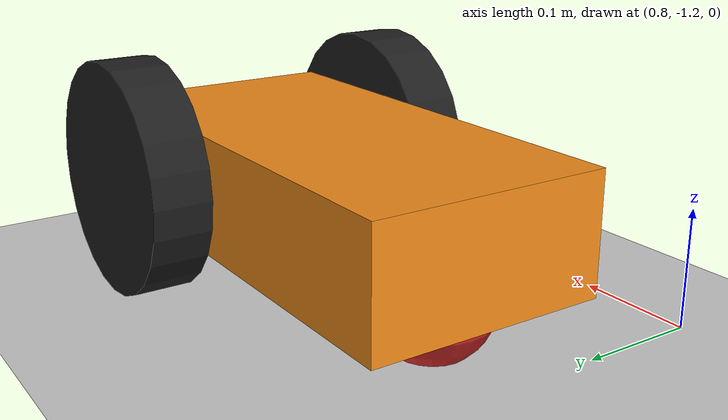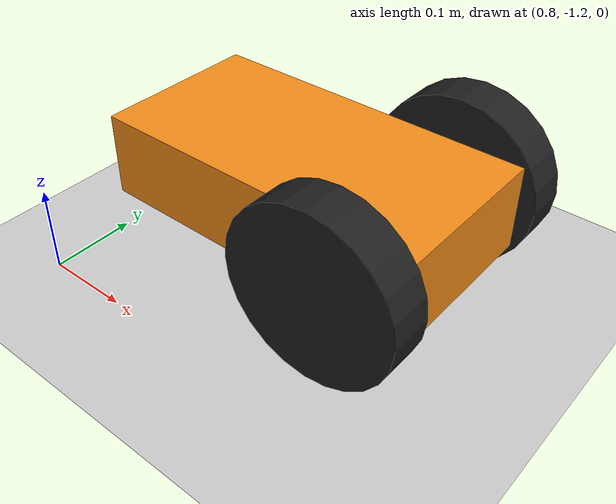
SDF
<sdf version="1.4">
 <world name="default">
  <light name="sun" type="directional">
   <pose>0 0 10 0 -0 0</pose>
   <diffuse>0.8 0.8 0.8 1</diffuse>
   <specular>0.2 0.2 0.2 1</specular>
   <attenuation>
    <range>1000</range>
    <constant>0.9</constant>
    <linear>0.01</linear>
    <quadratic>0.001</quadratic>
   </attenuation>
   <direction>-0.5 0.1 -0.9</direction>
  </light>
  <model name="ground_plane">
   <static>1</static>
   <link name="link">
    <collision name="collision">
     <geometry><plane><normal>0 0 1</normal><size>100 100</size></plane></geometry>
     <surface><friction><ode><mu>100</mu><mu2>50</mu2></ode></friction></surface>
    </collision>
    <visual name="visual">
     <cast_shadows>0</cast_shadows>
     <geometry><plane><normal>0 0 1</normal><size>100 100</size></plane></geometry>
     <material>
      <script><uri>file://media/materials/scripts/gazebo.material</uri><name>Gazebo/Grey</name></script>
     </material>
    </visual>
    <velocity_decay><linear>0</linear><angular>0</angular></velocity_decay>
   </link>
  </model>
  <physics type="ode">
   <max_step_size>0.001</max_step_size>
   <real_time_factor>1</real_time_factor>
   <real_time_update_rate>1000</real_time_update_rate>
   <gravity>0 0 -9.8</gravity>
  </physics>
  <scene><ambient>0.4 0.4 0.4 1</ambient><background>0.7 0.7 0.7 1</background><shadows>1</shadows></scene>
  <spherical_coordinates>
   <surface_model>EARTH_WGS84</surface_model>
   <latitude_deg>0</latitude_deg>
   <longitude_deg>0</longitude_deg>
   <elevation>0</elevation>
   <heading_deg>0</heading_deg>
  </spherical_coordinates>
  <model name="mobot">
   <static>0</static>
   <link name="chassis">
    <pose>0 0 0.1 0 -0 0</pose>
    <collision name="collision"><geometry><box><size>0.4 0.2 0.1</size></box></geometry></collision>
    <visual name="visual">
     <geometry><box><size>0.4 0.2 0.1</size></box></geometry>
     <material><script><name>Gazebo/Orange</name><uri>__default__</uri></script></material>
    </visual>
    <inertial>
     <mass>50</mass>
     <inertia>
      <ixx>0.208333</ixx>
      <iyy>0.708333</iyy>
      <izz>0.833333</izz>
      <ixy>0</ixy>
      <ixz>0</ixz>
      <iyz>0</iyz>
     </inertia>
    </inertial>
    <collision name="caster_collision">
     <pose>-0.133333 0 -0.05 0 -0 0</pose>
     <geometry><sphere><radius>0.05</radius></sphere></geometry>
     <surface><friction><ode><mu>0</mu><mu2>0</mu2><slip1>1</slip1><slip2>1</slip2></ode></friction></surface>
    </collision>
    <visual name="caster_visual">
     <pose>-0.133333 0 -0.05 0 -0 0</pose>
     <geometry><sphere><radius>0.05</radius></sphere></geometry>
     <material><script><name>Gazebo/Red</name><uri>__default__</uri></script></material>
    </visual>
    <velocity_decay><linear>0</linear><angular>0</angular></velocity_decay>
   </link>
   <link name="left_wheel">
    <pose>0.12 0.125 0.1 -3.14158 1.57079 -1.57078</pose>
    <collision name="left_wheel_collision">
     <geometry><cylinder><radius>0.1</radius><length>0.05</length></cylinder></geometry>
     <surface><friction><ode><mu>1</mu><mu2>1</mu2><slip1>0</slip1><slip2>0</slip2></ode></friction></surface>
    </collision>
    <visual name="left_wheel_visual">
     <geometry><cylinder><radius>0.1</radius><length>0.05</length></cylinder></geometry>
     <material><script><name>Gazebo/Black</name><uri>__default__</uri></script></material>
    </visual>
    <inertial>
     <mass>5</mass>
     <inertia>
      <ixx>0.0135417</ixx>
      <iyy>0.0135417</iyy>
      <izz>0.025</izz>
      <ixy>0</ixy>
      <ixz>0</ixz>
      <iyz>0</iyz>
     </inertia>
    </inertial>
    <velocity_decay><linear>0</linear><angular>0</angular></velocity_decay>
   </link>
   <joint name="left_wheel_hinge" type="revolute">
    <parent>chassis</parent>
    <child>left_wheel</child>
    <pose>0 0 0.025 0 -0 0</pose>
    <axis>
     <xyz>0 1 0</xyz>
     <dynamics><damping>5</damping></dynamics>
     <limit><effort>100</effort><velocity>100</velocity><lower>-1e+16</lower><upper>1e+16</upper></limit>
    </axis>
   </joint>
   <link name="right_wheel">
    <pose>0.12 -0.125 0.1 -3.14158 1.57079 -1.57078</pose>
    <collision name="right_wheel_collision">
     <geometry><cylinder><radius>0.1</radius><length>0.05</length></cylinder></geometry>
     <surface><friction><ode><mu>1</mu><mu2>1</mu2><slip1>0</slip1><slip2>0</slip2></ode></friction></surface>
    </collision>
    <visual name="right_wheel_visual">
     <geometry><cylinder><radius>0.1</radius><length>0.05</length></cylinder></geometry>
     <material><script><name>Gazebo/Black</name><uri>__default__</uri></script></material>
    </visual>
    <inertial>
     <mass>5</mass>
     <inertia>
      <ixx>0.0135417</ixx>
      <iyy>0.0135417</iyy>
      <izz>0.025</izz>
      <ixy>0</ixy>
      <ixz>0</ixz>
      <iyz>0</iyz>
     </inertia>
    </inertial>
    <velocity_decay><linear>0</linear><angular>0</angular></velocity_decay>
   </link>
   <joint name="right_wheel_hinge" type="revolute">
    <parent>chassis</parent>
    <child>right_wheel</child>
    <pose>0 0 0.025 0 -0 0</pose>
    <axis>
     <xyz>0 1 0</xyz>
     <dynamics><damping>5</damping></dynamics>
     <limit><effort>100</effort><velocity>100</velocity><lower>-1e+16</lower><upper>1e+16</upper></limit>
    </axis>
   </joint>
   <plugin name="differential_drive_controller" filename="libgazebo_ros_diff_drive.so">
    <alwaysOn>true</alwaysOn>
    <updateRate>100</updateRate>
    <leftJoint>left_wheel_hinge</leftJoint>
    <rightJoint>right_wheel_hinge</rightJoint>
    <wheelSeparation>0.25</wheelSeparation>
    <wheelDiameter>0.2</wheelDiameter>
    <torque>20</torque>
    <commandTopic>mobot/cmd_vel</commandTopic>
    <odometryTopic>mobot/odom_diffdrive</odometryTopic>
    <odometryFrame>odom</odometryFrame>
    <robotBaseFrame>chassis</robotBaseFrame>
   </plugin>
   <pose>1.00101 -1.00035 0 1e-06 -2.58494e-26 -0.000168</pose>
  </model>
 </world>
</sdf>
